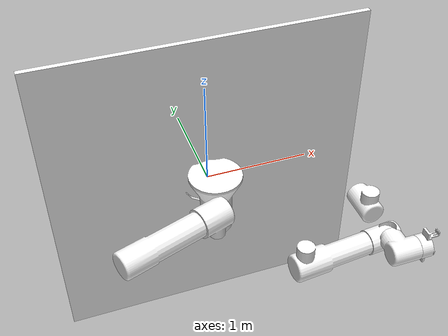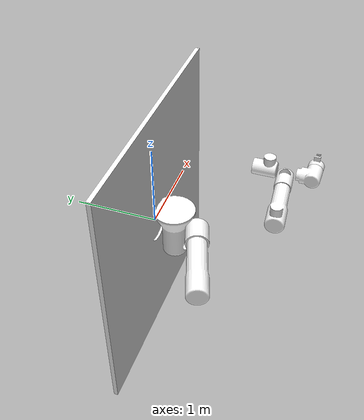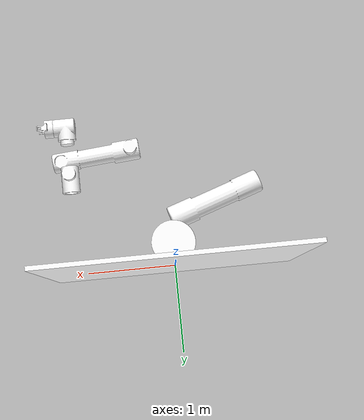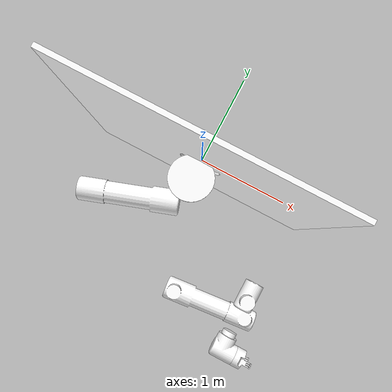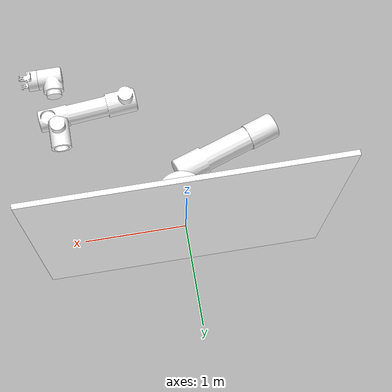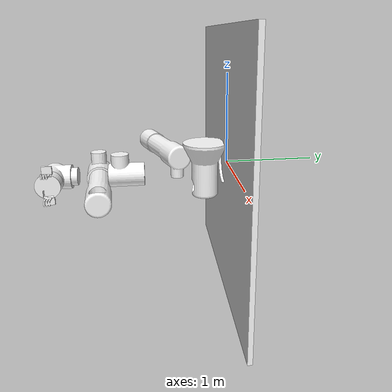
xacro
<?xml version="1.0"?>
<robot name="myarm" xmlns:xacro="http://ros.org/wiki/xacro">

<!-- Defining the colors used in this robot -->
    <material name="Black">
        <color rgba="0 0 0 1"/>
    </material>

    <material name="White">
        <color rgba="1 1 1 1"/>
    </material>

    <material name="Blue">
        <color rgba="0 0 1 1"/>
    </material>

    <material name="Red">
        <color rgba="1 0 0 1"/>
    </material>

    <!-- Constants -->
    <xacro:property name="M_PI" value="3.14159"/>

    <!-- Gripper frame -->
    <xacro:property name="grasp_frame_radius" value="0.001" />

    <!-- Inertial matrix -->
    <xacro:macro name="inertial_matrix" params="mass">
        <inertial>
            <mass value="${mass}" />
            <inertia ixx="1.0" ixy="0.0" ixz="0.0" iyy="0.5" iyz="0.0" izz="1.0" />
        </inertial>
    </xacro:macro>

  <link name="base_link">
    <inertial>
      <origin
        xyz="-3.511E-17 -2.0937E-16 0.024867"
        rpy="0 0 0" />
      <mass
        value="444.11" />
      <inertia
        ixx="337.5"
        ixy="3.6082E-14"
        ixz="7.5848E-18"
        iyy="337.5"
        iyz="7.0622E-16"
        izz="674.82" />
    </inertial>
    <visual>
      <origin
        xyz="0 0 0"
        rpy="${M_PI/2} 0 0" />
      <geometry>
        <mesh
          filename="package://marm_description/meshes/base_link.STL" />
      </geometry>
      <material name="">
        <color
          rgba="1 1 1 1" />
      </material>
    </visual>
    <collision>
      <origin
        xyz="0 0 0"
        rpy="${M_PI/2} 0 0" />
      <geometry>
        <mesh
          filename="package://marm_description/meshes/base_link.STL" />
      </geometry>
    </collision>
  </link>

  <link
    name="link1">
    <inertial>
      <origin
        xyz="3.491E-07 0.0028335 0.01492"
        rpy="0 0 0" />
      <mass
        value="57.966" />
      <inertia
        ixx="2.5483"
        ixy="9.0628E-07"
        ixz="-1.5304E-06"
        iyy="2.5639"
        iyz="-0.04354"
        izz="1.0444" />
    </inertial>
    <visual>
      <origin
        xyz="0 0 0"
        rpy="${M_PI/2} 0 0" />
      <geometry>
        <mesh
          filename="package://marm_description/meshes/link1.STL" />
      </geometry>
      <material
        name="">
        <color
          rgba="1 1 1 1" />
      </material>
    </visual>
    <collision>
      <origin
        xyz="0 0 0"
        rpy="${M_PI/2} 0 0" />
      <geometry>
        <mesh
          filename="package://marm_description/meshes/link1.STL" />
      </geometry>
    </collision>
  </link>

  <joint name="joint1" type="revolute">
    <origin xyz="0 -0.25 0" rpy="-1.5708 -1.2246E-16 3.1416" />
    <parent link="base_link" />
    <child link="link1" />
    <axis xyz="0 0 0" />
    <limit effort="300" velocity="1" lower="-2.96" upper="2.96"/>
    <dynamics damping="50" friction="1"/>
  </joint>

  <link
    name="link2">
    <inertial>
      <origin
        xyz="-0.23594 0.40746 -3.7574E-08"
        rpy="0 0 0" />
      <mass
        value="57.425" />
      <inertia
        ixx="6.4378"
        ixy="0.19841"
        ixz="-9.9286E-07"
        iyy="0.53245"
        iyz="2.3077E-06"
        izz="6.4921" />
    </inertial>
    <visual>
      <origin
        xyz="0 0 0"
        rpy="${M_PI/2} 0 0" />
      <geometry>
        <mesh
          filename="package://marm_description/meshes/link2.STL" />
      </geometry>
      <material
        name="">
        <color
          rgba="1 1 1 1" />
      </material>
    </visual>
    <collision>
      <origin
        xyz="0 0 0"
        rpy="${M_PI/2} 0 0" />
      <geometry>
        <mesh
          filename="package://marm_description/meshes/link2.STL" />
      </geometry>
    </collision>
  </link>
  <joint
    name="joint2"
    type="revolute">
    <origin
      xyz="0 -0.05 0.28"
      rpy="1.2415 -2.5305E-16 1.5708" />
    <parent
      link="link1" />
    <child
      link="link2" />
    <axis
      xyz="-1 0 0" />
    <limit effort="300" velocity="1" lower="-2.35" upper="2.35" />
    <dynamics damping="50" friction="1"/>
  </joint>

  <link
    name="link3">
    <inertial>
      <origin
        xyz="-0.023731 0.35093 -3.9485E-09"
        rpy="0 0 0" />
      <mass
        value="38.36" />
      <inertia
        ixx="3.5596"
        ixy="0.1423"
        ixz="-1.1416E-06"
        iyy="0.27636"
        iyz="2.9576E-07"
        izz="3.6045" />
    </inertial>
    <visual>
      <origin
        xyz="0 0 0"
        rpy="0 0 0" />
      <geometry>
        <mesh
          filename="package://marm_description/meshes/link3.STL" />
      </geometry>
      <material
        name="">
        <color
          rgba="1 1 1 1" />
      </material>
    </visual>
    <collision>
      <origin
        xyz="0 0 0"
        rpy="0 0 0" />
      <geometry>
        <mesh
          filename="package://marm_description/meshes/link3.STL" />
      </geometry>
    </collision>
  </link>
  <joint
    name="joint3"
    type="revolute">
    <origin
      xyz="0 0.9 0"
      rpy="-1.8083 -1.0811E-16 3.1416" />
    <parent
      link="link2" />
    <child
      link="link3" />
    <axis
      xyz="1 0 0" />
   <limit effort="300" velocity="1" lower="-2.62" upper="2.62" />
   <dynamics damping="50" friction="1"/>
  </joint>

  <link
    name="link4">
    <inertial>
      <origin
        xyz="8.6704E-09 0.13203 0.020954"
        rpy="0 0 0" />
      <mass
        value="10.038" />
      <inertia
        ixx="0.10563"
        ixy="1.3415E-07"
        ixz="4.5282E-08"
        iyy="0.071748"
        iyz="0.0067371"
        izz="0.082807" />
    </inertial>
    <visual>
      <origin
        xyz="0 0 0"
        rpy="0 0 0" />
      <geometry>
        <mesh
          filename="package://marm_description/meshes/link4.STL" />
      </geometry>
      <material
        name="">
        <color
          rgba="1 1 1 1" />
      </material>
    </visual>
    <collision>
      <origin
        xyz="0 0 0"
        rpy="0 0 0" />
      <geometry>
        <mesh
          filename="package://marm_description/meshes/link4.STL" />
      </geometry>
    </collision>
  </link>
  <joint
    name="joint4"
    type="revolute">
    <origin
      xyz="0.2 0.80917 0.099579"
      rpy="-1.5708 0.091783 1.5708" />
    <parent
      link="link3" />
    <child
      link="link4" />
    <axis
      xyz="0 0 0" />
       <limit effort="300" velocity="1" lower="-2.62" upper="2.62" />
        <dynamics damping="50" friction="1"/>
  </joint>
  <link
    name="link5">
    <inertial>
      <origin
        xyz="1.1124E-08 0.10421 0.041487"
        rpy="0 0 0" />
      <mass
        value="9.417" />
      <inertia
        ixx="0.087332"
        ixy="2.1223E-08"
        ixz="-5.3766E-09"
        iyy="0.08101"
        iyz="0.001687"
        izz="0.055716" />
    </inertial>
    <visual>
      <origin
        xyz="0 0 0"
        rpy="0 0 0" />
      <geometry>
        <mesh
          filename="package://marm_description/meshes/link5.STL" />
      </geometry>
      <material
        name="">
        <color
          rgba="1 1 1 1" />
      </material>
    </visual>
    <collision>
      <origin
        xyz="0 0 0"
        rpy="0 0 0" />
      <geometry>
        <mesh
          filename="package://marm_description/meshes/link5.STL" />
      </geometry>
    </collision>
  </link>
  <joint
    name="joint5"
    type="revolute">
    <origin
      xyz="-0.1 0.45 0"
      rpy="1.5708 1.5708 0" />
    <parent
      link="link4" />
    <child
      link="link5" />
    <axis
      xyz="0 0 0" />
        <limit effort="300" velocity="1" lower="-2.62" upper="2.62" />
        <dynamics damping="50" friction="1"/>
  </joint>
  <link
    name="link6">
    <inertial>
      <origin
        xyz="0 0.076204 0"
        rpy="0 0 0" />
      <mass
        value="3.6844" />
      <inertia
        ixx="0.015237"
        ixy="-7.1495E-20"
        ixz="-2.176E-19"
        iyy="0.016852"
        iyz="1.0801E-18"
        izz="0.013643" />
    </inertial>
    <visual>
      <origin
        xyz="0 0 0"
        rpy="0 0 0" />
      <geometry>
        <mesh
          filename="package://marm_description/meshes/link6.STL" />
      </geometry>
      <material
        name="">
        <color
          rgba="1 1 1 1" />
      </material>
    </visual>
    <collision>
      <origin
        xyz="0 0 0"
        rpy="0 0 0" />
      <geometry>
        <mesh
          filename="package://marm_description/meshes/link6.STL" />
      </geometry>
    </collision>
  </link>
  <joint
    name="joint6"
    type="revolute">
    <origin
      xyz="0 0.19 0"
      rpy="3.1416 0 3.1416" />
    <parent
      link="link5" />
    <child
      link="link6" />
    <axis
      xyz="0 0 0" />
   <limit effort="300" velocity="1" lower="-6.28" upper="6.28" />
        <dynamics damping="50" friction="1"/>
  </joint>
  <link
    name="gripper_finger_link1">
    <inertial>
      <origin
        xyz="-0.0045948 2.2204E-16 0.018054"
        rpy="0 0 0" />
      <mass
        value="0.1382" />
      <inertia
        ixx="9.1673E-05"
        ixy="1.3114E-20"
        ixz="2.4411E-05"
        iyy="0.00022117"
        iyz="2.2849E-20"
        izz="0.00025212" />
    </inertial>
    <visual>
      <origin
        xyz="0 0 0"
        rpy="0 0 0" />
      <geometry>
        <mesh
          filename="package://marm_description/meshes/gripper_finger_link1.STL" />
      </geometry>
      <material
        name="">
        <color
          rgba="1 1 1 1" />
      </material>
    </visual>
    <collision>
      <origin
        xyz="0 0 0"
        rpy="0 0 0" />
      <geometry>
        <mesh
          filename="package://marm_description/meshes/gripper_finger_link1.STL" />
      </geometry>
    </collision>
  </link>
  <joint name="finger_joint1" type="prismatic">
    <origin
      xyz="-0.09 0.15 0"
      rpy="1.5708 0 1.5708" />
    <parent
      link="link6" />
    <child
      link="gripper_finger_link1" />
    <axis
      xyz="0 0 0" />
    <limit effort="100" lower="0" upper="0.06" velocity="1.0"/>
    <dynamics damping="50" friction="1"/>
  </joint>
  <link
    name="gripper_finger_link2">
    <inertial>
      <origin
        xyz="-0.0045948 0 0.018054"
        rpy="0 0 0" />
      <mass
        value="0.1382" />
      <inertia
        ixx="9.1673E-05"
        ixy="2.9871E-20"
        ixz="2.4411E-05"
        iyy="0.00022117"
        iyz="4.1677E-21"
        izz="0.00025212" />
    </inertial>
    <visual>
      <origin
        xyz="0 0 0"
        rpy="0 0 0" />
      <geometry>
        <mesh
          filename="package://marm_description/meshes/gripper_finger_link2.STL" />
      </geometry>
      <material
        name="">
        <color
          rgba="1 1 1 1" />
      </material>
    </visual>
    <collision>
      <origin
        xyz="0 0 0"
        rpy="0 0 0" />
      <geometry>
        <mesh
          filename="package://marm_description/meshes/gripper_finger_link2.STL" />
      </geometry>
    </collision>
  </link>
  <joint
    name="finger_joint2"
    type="fixed">
    <origin
      xyz="0.09 0.15 0"
      rpy="-1.5708 0 1.5708" />
    <parent
      link="link6" />
    <child
      link="gripper_finger_link2" />
    <axis
      xyz="0 0 0" />
  </joint>

    <!-- Grasping frame -->
    <link name="grasping_frame"/>

    <joint name="grasping_frame_joint" type="fixed">
      <parent link="link6"/>
      <child link="grasping_frame"/>
      <origin xyz="0.08 0 0" rpy="0 0 0"/>
    </joint>

    <!-- /////////////////////////////////   Gazebo   ////////////////////////////////////// -->
    <gazebo reference="bottom_link">
        <material>Gazebo/White</material>
    </gazebo>
    <gazebo reference="base_link">
        <material>Gazebo/White</material>
    </gazebo>
    <gazebo reference="link1">
        <material>Gazebo/Blue</material>
    </gazebo>
    <gazebo reference="link2">
        <material>Gazebo/White</material>
    </gazebo>
    <gazebo reference="link3">
        <material>Gazebo/Blue</material>
    </gazebo>
    <gazebo reference="link4">
        <material>Gazebo/Black</material>
    </gazebo>
    <gazebo reference="link5">
        <material>Gazebo/White</material>
    </gazebo>
    <gazebo reference="link6">
        <material>Gazebo/Blue</material>
    </gazebo>
    <gazebo reference="gripper_finger_link1">
        <material>Gazebo/White</material>
    </gazebo>
    <gazebo reference="gripper_finger_link2">
        <material>Gazebo/White</material>
    </gazebo>

    <!-- Transmissions for ROS Control -->
    <xacro:macro name="transmission_block" params="joint_name">
        <transmission name="tran1">
            <type>transmission_interface/SimpleTransmission</type>
            <joint name="${joint_name}">
                <hardwareInterface>hardware_interface/PositionJointInterface</hardwareInterface>
            </joint>
            <actuator name="motor1">
                <hardwareInterface>hardware_interface/PositionJointInterface</hardwareInterface>
                <mechanicalReduction>1</mechanicalReduction>
            </actuator>
        </transmission>
    </xacro:macro>

    <xacro:transmission_block joint_name="joint1"/>
    <xacro:transmission_block joint_name="joint2"/>
    <xacro:transmission_block joint_name="joint3"/>
    <xacro:transmission_block joint_name="joint4"/>
    <xacro:transmission_block joint_name="joint5"/>
    <xacro:transmission_block joint_name="joint6"/>
    <xacro:transmission_block joint_name="finger_joint1"/>

    <!-- ros_control plugin -->
    <gazebo>
        <plugin name="gazebo_ros_control" filename="libgazebo_ros_control.so">
            <robotNamespace>/myarm</robotNamespace>
        </plugin>
    </gazebo>
</robot>
